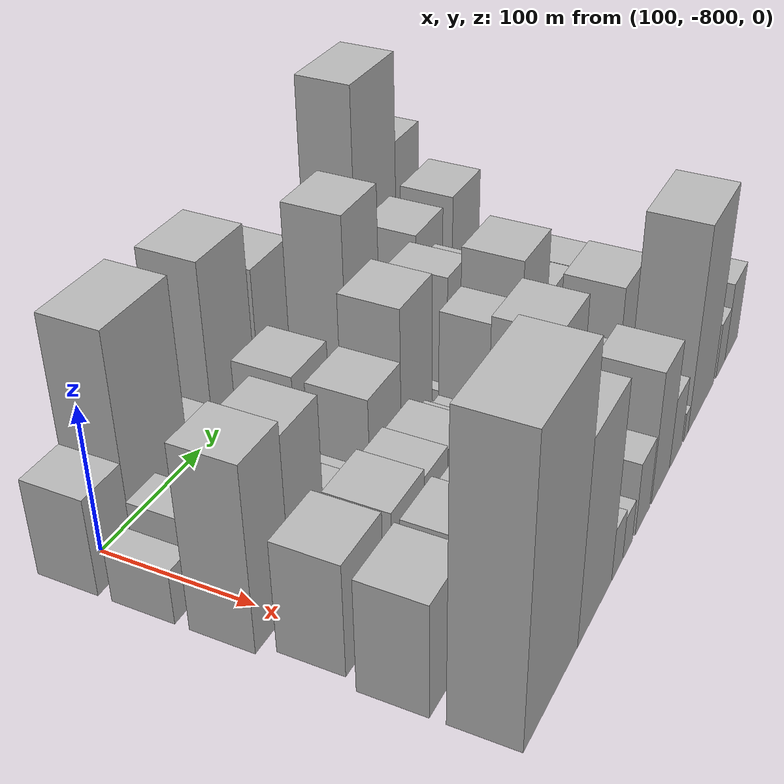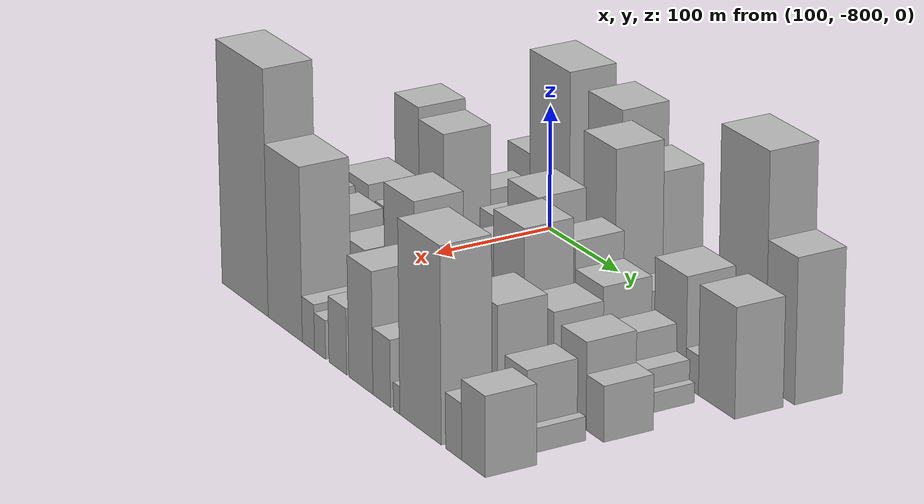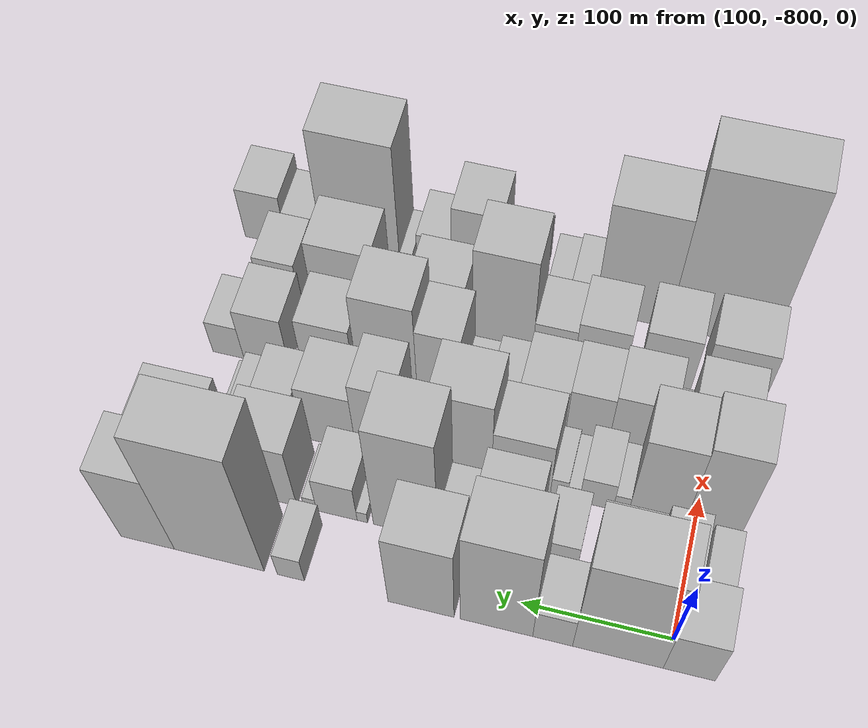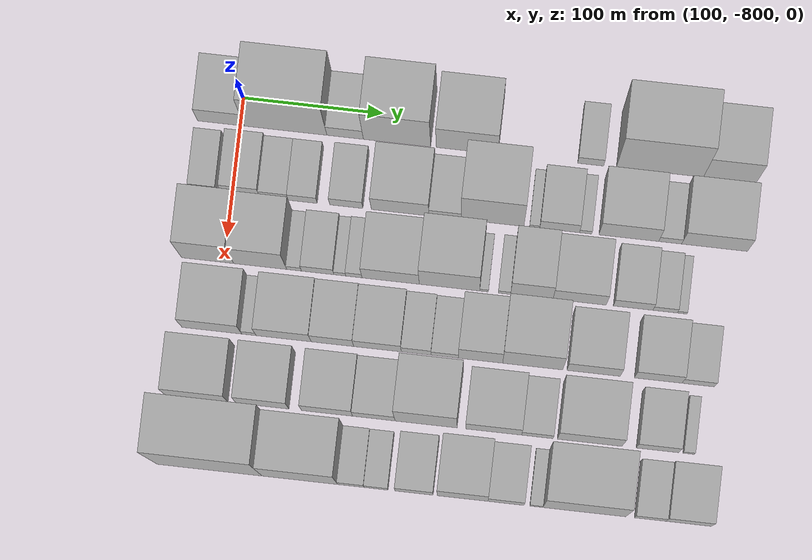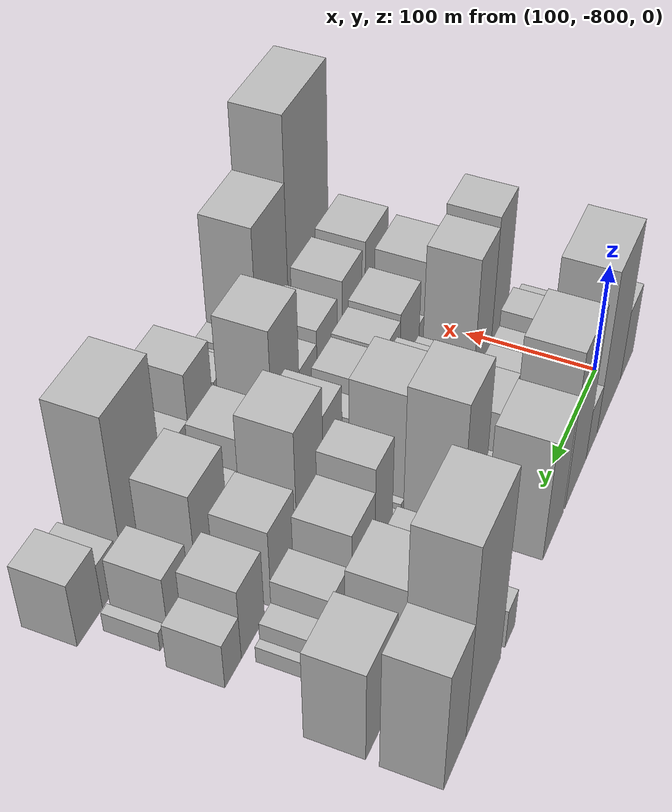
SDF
<sdf version="1.6">
 <world name="default">
  <model name="building_1">
   <static>1</static>
   <pose>100.0000 -813.3282 0 0.000000 0.000000 0.000000</pose>
   <link name="link">
    <pose>0 0 33.00 0 0 0</pose>
    <collision name="collision"><geometry><box><size>40.0000 33.3435 66.0000</size></box></geometry></collision>
    <visual name="visual">
     <cast_shadows>0</cast_shadows>
     <geometry><box><size>40.0000 33.3435 66.0000</size></box></geometry>
     <material>
      <script>
       <uri>model://HANNAS_wall/materials/scripts</uri>
       <uri>model://HANNAS_wall/materials/textures</uri>
       <name>vrc/HANNAS_wall</name>
      </script>
     </material>
    </visual>
   </link>
  </model>
  <model name="building_2">
   <static>1</static>
   <pose>100.0000 -767.2986 0 0.000000 0.000000 0.000000</pose>
   <link name="link">
    <pose>0 0 75.00 0 0 0</pose>
    <collision name="collision"><geometry><box><size>40.0000 58.7158 150.0000</size></box></geometry></collision>
    <visual name="visual">
     <cast_shadows>0</cast_shadows>
     <geometry><box><size>40.0000 58.7158 150.0000</size></box></geometry>
     <material>
      <script>
       <uri>model://HANNAS_wall/materials/scripts</uri>
       <uri>model://HANNAS_wall/materials/textures</uri>
       <name>vrc/HANNAS_wall</name>
      </script>
     </material>
    </visual>
   </link>
  </model>
  <model name="building_3">
   <static>1</static>
   <pose>100.0000 -724.9146 0 0.000000 0.000000 0.000000</pose>
   <link name="link">
    <pose>0 0 24.00 0 0 0</pose>
    <collision name="collision"><geometry><box><size>40.0000 26.0522 48.0000</size></box></geometry></collision>
    <visual name="visual">
     <cast_shadows>0</cast_shadows>
     <geometry><box><size>40.0000 26.0522 48.0000</size></box></geometry>
     <material>
      <script>
       <uri>model://HANNAS_wall/materials/scripts</uri>
       <uri>model://HANNAS_wall/materials/textures</uri>
       <name>vrc/HANNAS_wall</name>
      </script>
     </material>
    </visual>
   </link>
  </model>
  <model name="building_4">
   <static>1</static>
   <pose>100.0000 -687.8914 0 0.000000 0.000000 0.000000</pose>
   <link name="link">
    <pose>0 0 72.00 0 0 0</pose>
    <collision name="collision"><geometry><box><size>40.0000 47.9941 144.0000</size></box></geometry></collision>
    <visual name="visual">
     <cast_shadows>0</cast_shadows>
     <geometry><box><size>40.0000 47.9941 144.0000</size></box></geometry>
     <material>
      <script>
       <uri>model://HANNAS_wall/materials/scripts</uri>
       <uri>model://HANNAS_wall/materials/textures</uri>
       <name>vrc/HANNAS_wall</name>
      </script>
     </material>
    </visual>
   </link>
  </model>
  <model name="building_5">
   <static>1</static>
   <pose>100.0000 -637.8345 0 0.000000 0.000000 0.000000</pose>
   <link name="link">
    <pose>0 0 55.50 0 0 0</pose>
    <collision name="collision"><geometry><box><size>40.0000 44.1198 111.0000</size></box></geometry></collision>
    <visual name="visual">
     <cast_shadows>0</cast_shadows>
     <geometry><box><size>40.0000 44.1198 111.0000</size></box></geometry>
     <material>
      <script>
       <uri>model://HANNAS_wall/materials/scripts</uri>
       <uri>model://HANNAS_wall/materials/textures</uri>
       <name>vrc/HANNAS_wall</name>
      </script>
     </material>
    </visual>
   </link>
  </model>
  <model name="building_6">
   <static>1</static>
   <pose>100.0000 -549.9230 0 0.000000 0.000000 0.000000</pose>
   <link name="link">
    <pose>0 0 18.00 0 0 0</pose>
    <collision name="collision"><geometry><box><size>40.0000 18.5677 36.0000</size></box></geometry></collision>
    <visual name="visual">
     <cast_shadows>0</cast_shadows>
     <geometry><box><size>40.0000 18.5677 36.0000</size></box></geometry>
     <material>
      <script>
       <uri>model://HANNAS_wall/materials/scripts</uri>
       <uri>model://HANNAS_wall/materials/textures</uri>
       <name>vrc/HANNAS_wall</name>
      </script>
     </material>
    </visual>
   </link>
  </model>
  <model name="building_7">
   <static>1</static>
   <pose>100.0000 -500.5993 0 0.000000 0.000000 0.000000</pose>
   <link name="link">
    <pose>0 0 88.50 0 0 0</pose>
    <collision name="collision"><geometry><box><size>40.0000 62.0797 177.0000</size></box></geometry></collision>
    <visual name="visual">
     <cast_shadows>0</cast_shadows>
     <geometry><box><size>40.0000 62.0797 177.0000</size></box></geometry>
     <material>
      <script>
       <uri>model://HANNAS_wall/materials/scripts</uri>
       <uri>model://HANNAS_wall/materials/textures</uri>
       <name>vrc/HANNAS_wall</name>
      </script>
     </material>
    </visual>
   </link>
  </model>
  <model name="building_8">
   <static>1</static>
   <pose>100.0000 -450.7751 0 0.000000 0.000000 0.000000</pose>
   <link name="link">
    <pose>0 0 55.50 0 0 0</pose>
    <collision name="collision"><geometry><box><size>40.0000 37.5688 111.0000</size></box></geometry></collision>
    <visual name="visual">
     <cast_shadows>0</cast_shadows>
     <geometry><box><size>40.0000 37.5688 111.0000</size></box></geometry>
     <material>
      <script>
       <uri>model://HANNAS_wall/materials/scripts</uri>
       <uri>model://HANNAS_wall/materials/textures</uri>
       <name>vrc/HANNAS_wall</name>
      </script>
     </material>
    </visual>
   </link>
  </model>
  <model name="building_42">
   <static>1</static>
   <pose>149.0000 -820.1950 0 0.000000 0.000000 0.000000</pose>
   <link name="link">
    <pose>0 0 18.00 0 0 0</pose>
    <collision name="collision"><geometry><box><size>40.0000 19.6100 36.0000</size></box></geometry></collision>
    <visual name="visual">
     <cast_shadows>0</cast_shadows>
     <geometry><box><size>40.0000 19.6100 36.0000</size></box></geometry>
     <material>
      <script>
       <uri>model://HANNAS_wall/materials/scripts</uri>
       <uri>model://HANNAS_wall/materials/textures</uri>
       <name>vrc/HANNAS_wall</name>
      </script>
     </material>
    </visual>
   </link>
  </model>
  <model name="building_43">
   <static>1</static>
   <pose>149.0000 -793.7994 0 0.000000 0.000000 0.000000</pose>
   <link name="link">
    <pose>0 0 25.50 0 0 0</pose>
    <collision name="collision"><geometry><box><size>40.0000 27.1812 51.0000</size></box></geometry></collision>
    <visual name="visual">
     <cast_shadows>0</cast_shadows>
     <geometry><box><size>40.0000 27.1812 51.0000</size></box></geometry>
     <material>
      <script>
       <uri>model://HANNAS_wall/materials/scripts</uri>
       <uri>model://HANNAS_wall/materials/textures</uri>
       <name>vrc/HANNAS_wall</name>
      </script>
     </material>
    </visual>
   </link>
  </model>
  <model name="building_44">
   <static>1</static>
   <pose>149.0000 -770.0496 0 0.000000 0.000000 0.000000</pose>
   <link name="link">
    <pose>0 0 18.00 0 0 0</pose>
    <collision name="collision"><geometry><box><size>40.0000 20.3185 36.0000</size></box></geometry></collision>
    <visual name="visual">
     <cast_shadows>0</cast_shadows>
     <geometry><box><size>40.0000 20.3185 36.0000</size></box></geometry>
     <material>
      <script>
       <uri>model://HANNAS_wall/materials/scripts</uri>
       <uri>model://HANNAS_wall/materials/textures</uri>
       <name>vrc/HANNAS_wall</name>
      </script>
     </material>
    </visual>
   </link>
  </model>
  <model name="building_45">
   <static>1</static>
   <pose>149.0000 -749.5459 0 0.000000 0.000000 0.000000</pose>
   <link name="link">
    <pose>0 0 18.00 0 0 0</pose>
    <collision name="collision"><geometry><box><size>40.0000 20.6889 36.0000</size></box></geometry></collision>
    <visual name="visual">
     <cast_shadows>0</cast_shadows>
     <geometry><box><size>40.0000 20.6889 36.0000</size></box></geometry>
     <material>
      <script>
       <uri>model://HANNAS_wall/materials/scripts</uri>
       <uri>model://HANNAS_wall/materials/textures</uri>
       <name>vrc/HANNAS_wall</name>
      </script>
     </material>
    </visual>
   </link>
  </model>
  <model name="building_46">
   <static>1</static>
   <pose>149.0000 -718.4134 0 0.000000 0.000000 0.000000</pose>
   <link name="link">
    <pose>0 0 21.00 0 0 0</pose>
    <collision name="collision"><geometry><box><size>40.0000 23.5761 42.0000</size></box></geometry></collision>
    <visual name="visual">
     <cast_shadows>0</cast_shadows>
     <geometry><box><size>40.0000 23.5761 42.0000</size></box></geometry>
     <material>
      <script>
       <uri>model://HANNAS_wall/materials/scripts</uri>
       <uri>model://HANNAS_wall/materials/textures</uri>
       <name>vrc/HANNAS_wall</name>
      </script>
     </material>
    </visual>
   </link>
  </model>
  <model name="building_47">
   <static>1</static>
   <pose>149.0000 -680.1086 0 0.000000 0.000000 0.000000</pose>
   <link name="link">
    <pose>0 0 37.50 0 0 0</pose>
    <collision name="collision"><geometry><box><size>40.0000 41.0334 75.0000</size></box></geometry></collision>
    <visual name="visual">
     <cast_shadows>0</cast_shadows>
     <geometry><box><size>40.0000 41.0334 75.0000</size></box></geometry>
     <material>
      <script>
       <uri>model://HANNAS_wall/materials/scripts</uri>
       <uri>model://HANNAS_wall/materials/textures</uri>
       <name>vrc/HANNAS_wall</name>
      </script>
     </material>
    </visual>
   </link>
  </model>
  <model name="building_48">
   <static>1</static>
   <pose>149.0000 -648.0608 0 0.000000 0.000000 0.000000</pose>
   <link name="link">
    <pose>0 0 19.50 0 0 0</pose>
    <collision name="collision"><geometry><box><size>40.0000 23.0622 39.0000</size></box></geometry></collision>
    <visual name="visual">
     <cast_shadows>0</cast_shadows>
     <geometry><box><size>40.0000 23.0622 39.0000</size></box></geometry>
     <material>
      <script>
       <uri>model://HANNAS_wall/materials/scripts</uri>
       <uri>model://HANNAS_wall/materials/textures</uri>
       <name>vrc/HANNAS_wall</name>
      </script>
     </material>
    </visual>
   </link>
  </model>
  <model name="building_49">
   <static>1</static>
   <pose>149.0000 -614.3037 0 0.000000 0.000000 0.000000</pose>
   <link name="link">
    <pose>0 0 73.50 0 0 0</pose>
    <collision name="collision"><geometry><box><size>40.0000 44.4520 147.0000</size></box></geometry></collision>
    <visual name="visual">
     <cast_shadows>0</cast_shadows>
     <geometry><box><size>40.0000 44.4520 147.0000</size></box></geometry>
     <material>
      <script>
       <uri>model://HANNAS_wall/materials/scripts</uri>
       <uri>model://HANNAS_wall/materials/textures</uri>
       <name>vrc/HANNAS_wall</name>
      </script>
     </material>
    </visual>
   </link>
  </model>
  <model name="building_50">
   <static>1</static>
   <pose>149.0000 -584.4363 0 0.000000 0.000000 0.000000</pose>
   <link name="link">
    <pose>0 0 7.50 0 0 0</pose>
    <collision name="collision"><geometry><box><size>40.0000 7.2830 15.0000</size></box></geometry></collision>
    <visual name="visual">
     <cast_shadows>0</cast_shadows>
     <geometry><box><size>40.0000 7.2830 15.0000</size></box></geometry>
     <material>
      <script>
       <uri>model://HANNAS_wall/materials/scripts</uri>
       <uri>model://HANNAS_wall/materials/textures</uri>
       <name>vrc/HANNAS_wall</name>
      </script>
     </material>
    </visual>
   </link>
  </model>
  <model name="building_51">
   <static>1</static>
   <pose>149.0000 -566.6788 0 0.000000 0.000000 0.000000</pose>
   <link name="link">
    <pose>0 0 25.50 0 0 0</pose>
    <collision name="collision"><geometry><box><size>40.0000 28.2321 51.0000</size></box></geometry></collision>
    <visual name="visual">
     <cast_shadows>0</cast_shadows>
     <geometry><box><size>40.0000 28.2321 51.0000</size></box></geometry>
     <material>
      <script>
       <uri>model://HANNAS_wall/materials/scripts</uri>
       <uri>model://HANNAS_wall/materials/textures</uri>
       <name>vrc/HANNAS_wall</name>
      </script>
     </material>
    </visual>
   </link>
  </model>
  <model name="building_52">
   <static>1</static>
   <pose>149.0000 -548.1410 0 0.000000 0.000000 0.000000</pose>
   <link name="link">
    <pose>0 0 9.00 0 0 0</pose>
    <collision name="collision"><geometry><box><size>40.0000 8.8436 18.0000</size></box></geometry></collision>
    <visual name="visual">
     <cast_shadows>0</cast_shadows>
     <geometry><box><size>40.0000 8.8436 18.0000</size></box></geometry>
     <material>
      <script>
       <uri>model://HANNAS_wall/materials/scripts</uri>
       <uri>model://HANNAS_wall/materials/textures</uri>
       <name>vrc/HANNAS_wall</name>
      </script>
     </material>
    </visual>
   </link>
  </model>
  <model name="building_53">
   <static>1</static>
   <pose>149.0000 -517.4538 0 0.000000 0.000000 0.000000</pose>
   <link name="link">
    <pose>0 0 42.00 0 0 0</pose>
    <collision name="collision"><geometry><box><size>40.0000 42.5308 84.0000</size></box></geometry></collision>
    <visual name="visual">
     <cast_shadows>0</cast_shadows>
     <geometry><box><size>40.0000 42.5308 84.0000</size></box></geometry>
     <material>
      <script>
       <uri>model://HANNAS_wall/materials/scripts</uri>
       <uri>model://HANNAS_wall/materials/textures</uri>
       <name>vrc/HANNAS_wall</name>
      </script>
     </material>
    </visual>
   </link>
  </model>
  <model name="building_54">
   <static>1</static>
   <pose>149.0000 -488.0152 0 0.000000 0.000000 0.000000</pose>
   <link name="link">
    <pose>0 0 15.00 0 0 0</pose>
    <collision name="collision"><geometry><box><size>40.0000 16.3463 30.0000</size></box></geometry></collision>
    <visual name="visual">
     <cast_shadows>0</cast_shadows>
     <geometry><box><size>40.0000 16.3463 30.0000</size></box></geometry>
     <material>
      <script>
       <uri>model://HANNAS_wall/materials/scripts</uri>
       <uri>model://HANNAS_wall/materials/textures</uri>
       <name>vrc/HANNAS_wall</name>
      </script>
     </material>
    </visual>
   </link>
  </model>
  <model name="building_55">
   <static>1</static>
   <pose>149.0000 -456.4051 0 0.000000 0.000000 0.000000</pose>
   <link name="link">
    <pose>0 0 42.00 0 0 0</pose>
    <collision name="collision"><geometry><box><size>40.0000 46.8740 84.0000</size></box></geometry></collision>
    <visual name="visual">
     <cast_shadows>0</cast_shadows>
     <geometry><box><size>40.0000 46.8740 84.0000</size></box></geometry>
     <material>
      <script>
       <uri>model://HANNAS_wall/materials/scripts</uri>
       <uri>model://HANNAS_wall/materials/textures</uri>
       <name>vrc/HANNAS_wall</name>
      </script>
     </material>
    </visual>
   </link>
  </model>
  <model name="building_93">
   <static>1</static>
   <pose>198.0000 -811.4864 0 0.000000 0.000000 0.000000</pose>
   <link name="link">
    <pose>0 0 61.50 0 0 0</pose>
    <collision name="collision"><geometry><box><size>40.0000 37.0272 123.0000</size></box></geometry></collision>
    <visual name="visual">
     <cast_shadows>0</cast_shadows>
     <geometry><box><size>40.0000 37.0272 123.0000</size></box></geometry>
     <material>
      <script>
       <uri>model://HANNAS_wall/materials/scripts</uri>
       <uri>model://HANNAS_wall/materials/textures</uri>
       <name>vrc/HANNAS_wall</name>
      </script>
     </material>
    </visual>
   </link>
  </model>
  <model name="building_94">
   <static>1</static>
   <pose>198.0000 -774.0899 0 0.000000 0.000000 0.000000</pose>
   <link name="link">
    <pose>0 0 57.00 0 0 0</pose>
    <collision name="collision"><geometry><box><size>40.0000 37.7657 114.0000</size></box></geometry></collision>
    <visual name="visual">
     <cast_shadows>0</cast_shadows>
     <geometry><box><size>40.0000 37.7657 114.0000</size></box></geometry>
     <material>
      <script>
       <uri>model://HANNAS_wall/materials/scripts</uri>
       <uri>model://HANNAS_wall/materials/textures</uri>
       <name>vrc/HANNAS_wall</name>
      </script>
     </material>
    </visual>
   </link>
  </model>
  <model name="building_95">
   <static>1</static>
   <pose>198.0000 -749.9682 0 0.000000 0.000000 0.000000</pose>
   <link name="link">
    <pose>0 0 12.00 0 0 0</pose>
    <collision name="collision"><geometry><box><size>40.0000 10.4777 24.0000</size></box></geometry></collision>
    <visual name="visual">
     <cast_shadows>0</cast_shadows>
     <geometry><box><size>40.0000 10.4777 24.0000</size></box></geometry>
     <material>
      <script>
       <uri>model://HANNAS_wall/materials/scripts</uri>
       <uri>model://HANNAS_wall/materials/textures</uri>
       <name>vrc/HANNAS_wall</name>
      </script>
     </material>
    </visual>
   </link>
  </model>
  <model name="building_96">
   <static>1</static>
   <pose>198.0000 -733.2221 0 0.000000 0.000000 0.000000</pose>
   <link name="link">
    <pose>0 0 19.50 0 0 0</pose>
    <collision name="collision"><geometry><box><size>40.0000 23.0145 39.0000</size></box></geometry></collision>
    <visual name="visual">
     <cast_shadows>0</cast_shadows>
     <geometry><box><size>40.0000 23.0145 39.0000</size></box></geometry>
     <material>
      <script>
       <uri>model://HANNAS_wall/materials/scripts</uri>
       <uri>model://HANNAS_wall/materials/textures</uri>
       <name>vrc/HANNAS_wall</name>
      </script>
     </material>
    </visual>
   </link>
  </model>
  <model name="building_97">
   <static>1</static>
   <pose>198.0000 -717.4921 0 0.000000 0.000000 0.000000</pose>
   <link name="link">
    <pose>0 0 10.50 0 0 0</pose>
    <collision name="collision"><geometry><box><size>40.0000 8.4455 21.0000</size></box></geometry></collision>
    <visual name="visual">
     <cast_shadows>0</cast_shadows>
     <geometry><box><size>40.0000 8.4455 21.0000</size></box></geometry>
     <material>
      <script>
       <uri>model://HANNAS_wall/materials/scripts</uri>
       <uri>model://HANNAS_wall/materials/textures</uri>
       <name>vrc/HANNAS_wall</name>
      </script>
     </material>
    </visual>
   </link>
  </model>
  <model name="building_98">
   <static>1</static>
   <pose>198.0000 -707.4735 0 0.000000 0.000000 0.000000</pose>
   <link name="link">
    <pose>0 0 13.50 0 0 0</pose>
    <collision name="collision"><geometry><box><size>40.0000 11.5918 27.0000</size></box></geometry></collision>
    <visual name="visual">
     <cast_shadows>0</cast_shadows>
     <geometry><box><size>40.0000 11.5918 27.0000</size></box></geometry>
     <material>
      <script>
       <uri>model://HANNAS_wall/materials/scripts</uri>
       <uri>model://HANNAS_wall/materials/textures</uri>
       <name>vrc/HANNAS_wall</name>
      </script>
     </material>
    </visual>
   </link>
  </model>
  <model name="building_99">
   <static>1</static>
   <pose>198.0000 -681.3252 0 0.000000 0.000000 0.000000</pose>
   <link name="link">
    <pose>0 0 37.50 0 0 0</pose>
    <collision name="collision"><geometry><box><size>40.0000 40.7047 75.0000</size></box></geometry></collision>
    <visual name="visual">
     <cast_shadows>0</cast_shadows>
     <geometry><box><size>40.0000 40.7047 75.0000</size></box></geometry>
     <material>
      <script>
       <uri>model://HANNAS_wall/materials/scripts</uri>
       <uri>model://HANNAS_wall/materials/textures</uri>
       <name>vrc/HANNAS_wall</name>
      </script>
     </material>
    </visual>
   </link>
  </model>
  <model name="building_100">
   <static>1</static>
   <pose>198.0000 -639.4807 0 0.000000 0.000000 0.000000</pose>
   <link name="link">
    <pose>0 0 55.50 0 0 0</pose>
    <collision name="collision"><geometry><box><size>40.0000 42.9842 111.0000</size></box></geometry></collision>
    <visual name="visual">
     <cast_shadows>0</cast_shadows>
     <geometry><box><size>40.0000 42.9842 111.0000</size></box></geometry>
     <material>
      <script>
       <uri>model://HANNAS_wall/materials/scripts</uri>
       <uri>model://HANNAS_wall/materials/textures</uri>
       <name>vrc/HANNAS_wall</name>
      </script>
     </material>
    </visual>
   </link>
  </model>
  <model name="building_101">
   <static>1</static>
   <pose>198.0000 -614.9303 0 0.000000 0.000000 0.000000</pose>
   <link name="link">
    <pose>0 0 7.50 0 0 0</pose>
    <collision name="collision"><geometry><box><size>40.0000 6.1166 15.0000</size></box></geometry></collision>
    <visual name="visual">
     <cast_shadows>0</cast_shadows>
     <geometry><box><size>40.0000 6.1166 15.0000</size></box></geometry>
     <material>
      <script>
       <uri>model://HANNAS_wall/materials/scripts</uri>
       <uri>model://HANNAS_wall/materials/textures</uri>
       <name>vrc/HANNAS_wall</name>
      </script>
     </material>
    </visual>
   </link>
  </model>
  <model name="building_102">
   <static>1</static>
   <pose>198.0000 -600.4459 0 0.000000 0.000000 0.000000</pose>
   <link name="link">
    <pose>0 0 9.00 0 0 0</pose>
    <collision name="collision"><geometry><box><size>40.0000 8.8521 18.0000</size></box></geometry></collision>
    <visual name="visual">
     <cast_shadows>0</cast_shadows>
     <geometry><box><size>40.0000 8.8521 18.0000</size></box></geometry>
     <material>
      <script>
       <uri>model://HANNAS_wall/materials/scripts</uri>
       <uri>model://HANNAS_wall/materials/textures</uri>
       <name>vrc/HANNAS_wall</name>
      </script>
     </material>
    </visual>
   </link>
  </model>
  <model name="building_103">
   <static>1</static>
   <pose>198.0000 -581.0031 0 0.000000 0.000000 0.000000</pose>
   <link name="link">
    <pose>0 0 48.00 0 0 0</pose>
    <collision name="collision"><geometry><box><size>40.0000 30.0336 96.0000</size></box></geometry></collision>
    <visual name="visual">
     <cast_shadows>0</cast_shadows>
     <geometry><box><size>40.0000 30.0336 96.0000</size></box></geometry>
     <material>
      <script>
       <uri>model://HANNAS_wall/materials/scripts</uri>
       <uri>model://HANNAS_wall/materials/textures</uri>
       <name>vrc/HANNAS_wall</name>
      </script>
     </material>
    </visual>
   </link>
  </model>
  <model name="building_104">
   <static>1</static>
   <pose>198.0000 -547.0536 0 0.000000 0.000000 0.000000</pose>
   <link name="link">
    <pose>0 0 37.50 0 0 0</pose>
    <collision name="collision"><geometry><box><size>40.0000 37.8654 75.0000</size></box></geometry></collision>
    <visual name="visual">
     <cast_shadows>0</cast_shadows>
     <geometry><box><size>40.0000 37.8654 75.0000</size></box></geometry>
     <material>
      <script>
       <uri>model://HANNAS_wall/materials/scripts</uri>
       <uri>model://HANNAS_wall/materials/textures</uri>
       <name>vrc/HANNAS_wall</name>
      </script>
     </material>
    </visual>
   </link>
  </model>
  <model name="building_105">
   <static>1</static>
   <pose>198.0000 -509.0617 0 0.000000 0.000000 0.000000</pose>
   <link name="link">
    <pose>0 0 25.50 0 0 0</pose>
    <collision name="collision"><geometry><box><size>40.0000 28.1185 51.0000</size></box></geometry></collision>
    <visual name="visual">
     <cast_shadows>0</cast_shadows>
     <geometry><box><size>40.0000 28.1185 51.0000</size></box></geometry>
     <material>
      <script>
       <uri>model://HANNAS_wall/materials/scripts</uri>
       <uri>model://HANNAS_wall/materials/textures</uri>
       <name>vrc/HANNAS_wall</name>
      </script>
     </material>
    </visual>
   </link>
  </model>
  <model name="building_106">
   <static>1</static>
   <pose>198.0000 -486.3346 0 0.000000 0.000000 0.000000</pose>
   <link name="link">
    <pose>0 0 15.00 0 0 0</pose>
    <collision name="collision"><geometry><box><size>40.0000 17.3357 30.0000</size></box></geometry></collision>
    <visual name="visual">
     <cast_shadows>0</cast_shadows>
     <geometry><box><size>40.0000 17.3357 30.0000</size></box></geometry>
     <material>
      <script>
       <uri>model://HANNAS_wall/materials/scripts</uri>
       <uri>model://HANNAS_wall/materials/textures</uri>
       <name>vrc/HANNAS_wall</name>
      </script>
     </material>
    </visual>
   </link>
  </model>
  <model name="building_107">
   <static>1</static>
   <pose>198.0000 -474.2536 0 0.000000 0.000000 0.000000</pose>
   <link name="link">
    <pose>0 0 7.50 0 0 0</pose>
    <collision name="collision"><geometry><box><size>40.0000 6.8264 15.0000</size></box></geometry></collision>
    <visual name="visual">
     <cast_shadows>0</cast_shadows>
     <geometry><box><size>40.0000 6.8264 15.0000</size></box></geometry>
     <material>
      <script>
       <uri>model://HANNAS_wall/materials/scripts</uri>
       <uri>model://HANNAS_wall/materials/textures</uri>
       <name>vrc/HANNAS_wall</name>
      </script>
     </material>
    </visual>
   </link>
  </model>
  <model name="building_141">
   <static>1</static>
   <pose>247.0000 -802.7456 0 0.000000 0.000000 0.000000</pose>
   <link name="link">
    <pose>0 0 37.50 0 0 0</pose>
    <collision name="collision"><geometry><box><size>40.0000 42.5088 75.0000</size></box></geometry></collision>
    <visual name="visual">
     <cast_shadows>0</cast_shadows>
     <geometry><box><size>40.0000 42.5088 75.0000</size></box></geometry>
     <material>
      <script>
       <uri>model://HANNAS_wall/materials/scripts</uri>
       <uri>model://HANNAS_wall/materials/textures</uri>
       <name>vrc/HANNAS_wall</name>
      </script>
     </material>
    </visual>
   </link>
  </model>
  <model name="building_142">
   <static>1</static>
   <pose>247.0000 -776.4169 0 0.000000 0.000000 0.000000</pose>
   <link name="link">
    <pose>0 0 12.00 0 0 0</pose>
    <collision name="collision"><geometry><box><size>40.0000 10.1486 24.0000</size></box></geometry></collision>
    <visual name="visual">
     <cast_shadows>0</cast_shadows>
     <geometry><box><size>40.0000 10.1486 24.0000</size></box></geometry>
     <material>
      <script>
       <uri>model://HANNAS_wall/materials/scripts</uri>
       <uri>model://HANNAS_wall/materials/textures</uri>
       <name>vrc/HANNAS_wall</name>
      </script>
     </material>
    </visual>
   </link>
  </model>
  <model name="building_143">
   <static>1</static>
   <pose>247.0000 -751.8167 0 0.000000 0.000000 0.000000</pose>
   <link name="link">
    <pose>0 0 33.00 0 0 0</pose>
    <collision name="collision"><geometry><box><size>40.0000 39.0520 66.0000</size></box></geometry></collision>
    <visual name="visual">
     <cast_shadows>0</cast_shadows>
     <geometry><box><size>40.0000 39.0520 66.0000</size></box></geometry>
     <material>
      <script>
       <uri>model://HANNAS_wall/materials/scripts</uri>
       <uri>model://HANNAS_wall/materials/textures</uri>
       <name>vrc/HANNAS_wall</name>
      </script>
     </material>
    </visual>
   </link>
  </model>
  <model name="building_144">
   <static>1</static>
   <pose>247.0000 -717.1081 0 0.000000 0.000000 0.000000</pose>
   <link name="link">
    <pose>0 0 30.00 0 0 0</pose>
    <collision name="collision"><geometry><box><size>40.0000 30.3651 60.0000</size></box></geometry></collision>
    <visual name="visual">
     <cast_shadows>0</cast_shadows>
     <geometry><box><size>40.0000 30.3651 60.0000</size></box></geometry>
     <material>
      <script>
       <uri>model://HANNAS_wall/materials/scripts</uri>
       <uri>model://HANNAS_wall/materials/textures</uri>
       <name>vrc/HANNAS_wall</name>
      </script>
     </material>
    </visual>
   </link>
  </model>
  <model name="building_145">
   <static>1</static>
   <pose>247.0000 -685.0632 0 0.000000 0.000000 0.000000</pose>
   <link name="link">
    <pose>0 0 28.50 0 0 0</pose>
    <collision name="collision"><geometry><box><size>40.0000 33.7247 57.0000</size></box></geometry></collision>
    <visual name="visual">
     <cast_shadows>0</cast_shadows>
     <geometry><box><size>40.0000 33.7247 57.0000</size></box></geometry>
     <material>
      <script>
       <uri>model://HANNAS_wall/materials/scripts</uri>
       <uri>model://HANNAS_wall/materials/textures</uri>
       <name>vrc/HANNAS_wall</name>
      </script>
     </material>
    </visual>
   </link>
  </model>
  <model name="building_146">
   <static>1</static>
   <pose>247.0000 -657.5959 0 0.000000 0.000000 0.000000</pose>
   <link name="link">
    <pose>0 0 21.00 0 0 0</pose>
    <collision name="collision"><geometry><box><size>40.0000 21.2098 42.0000</size></box></geometry></collision>
    <visual name="visual">
     <cast_shadows>0</cast_shadows>
     <geometry><box><size>40.0000 21.2098 42.0000</size></box></geometry>
     <material>
      <script>
       <uri>model://HANNAS_wall/materials/scripts</uri>
       <uri>model://HANNAS_wall/materials/textures</uri>
       <name>vrc/HANNAS_wall</name>
      </script>
     </material>
    </visual>
   </link>
  </model>
  <model name="building_147">
   <static>1</static>
   <pose>247.0000 -637.2472 0 0.000000 0.000000 0.000000</pose>
   <link name="link">
    <pose>0 0 16.50 0 0 0</pose>
    <collision name="collision"><geometry><box><size>40.0000 19.4875 33.0000</size></box></geometry></collision>
    <visual name="visual">
     <cast_shadows>0</cast_shadows>
     <geometry><box><size>40.0000 19.4875 33.0000</size></box></geometry>
     <material>
      <script>
       <uri>model://HANNAS_wall/materials/scripts</uri>
       <uri>model://HANNAS_wall/materials/textures</uri>
       <name>vrc/HANNAS_wall</name>
      </script>
     </material>
    </visual>
   </link>
  </model>
  <model name="building_148">
   <static>1</static>
   <pose>247.0000 -611.9097 0 0.000000 0.000000 0.000000</pose>
   <link name="link">
    <pose>0 0 46.50 0 0 0</pose>
    <collision name="collision"><geometry><box><size>40.0000 31.1875 93.0000</size></box></geometry></collision>
    <visual name="visual">
     <cast_shadows>0</cast_shadows>
     <geometry><box><size>40.0000 31.1875 93.0000</size></box></geometry>
     <material>
      <script>
       <uri>model://HANNAS_wall/materials/scripts</uri>
       <uri>model://HANNAS_wall/materials/textures</uri>
       <name>vrc/HANNAS_wall</name>
      </script>
     </material>
    </visual>
   </link>
  </model>
  <model name="building_149">
   <static>1</static>
   <pose>247.0000 -575.0045 0 0.000000 0.000000 0.000000</pose>
   <link name="link">
    <pose>0 0 60.00 0 0 0</pose>
    <collision name="collision"><geometry><box><size>40.0000 42.6229 120.0000</size></box></geometry></collision>
    <visual name="visual">
     <cast_shadows>0</cast_shadows>
     <geometry><box><size>40.0000 42.6229 120.0000</size></box></geometry>
     <material>
      <script>
       <uri>model://HANNAS_wall/materials/scripts</uri>
       <uri>model://HANNAS_wall/materials/textures</uri>
       <name>vrc/HANNAS_wall</name>
      </script>
     </material>
    </visual>
   </link>
  </model>
  <model name="building_150">
   <static>1</static>
   <pose>247.0000 -531.7801 0 0.000000 0.000000 0.000000</pose>
   <link name="link">
    <pose>0 0 36.00 0 0 0</pose>
    <collision name="collision"><geometry><box><size>40.0000 37.8259 72.0000</size></box></geometry></collision>
    <visual name="visual">
     <cast_shadows>0</cast_shadows>
     <geometry><box><size>40.0000 37.8259 72.0000</size></box></geometry>
     <material>
      <script>
       <uri>model://HANNAS_wall/materials/scripts</uri>
       <uri>model://HANNAS_wall/materials/textures</uri>
       <name>vrc/HANNAS_wall</name>
      </script>
     </material>
    </visual>
   </link>
  </model>
  <model name="building_151">
   <static>1</static>
   <pose>247.0000 -485.9798 0 0.000000 0.000000 0.000000</pose>
   <link name="link">
    <pose>0 0 33.00 0 0 0</pose>
    <collision name="collision"><geometry><box><size>40.0000 33.7748 66.0000</size></box></geometry></collision>
    <visual name="visual">
     <cast_shadows>0</cast_shadows>
     <geometry><box><size>40.0000 33.7748 66.0000</size></box></geometry>
     <material>
      <script>
       <uri>model://HANNAS_wall/materials/scripts</uri>
       <uri>model://HANNAS_wall/materials/textures</uri>
       <name>vrc/HANNAS_wall</name>
      </script>
     </material>
    </visual>
   </link>
  </model>
  <model name="building_152">
   <static>1</static>
   <pose>247.0000 -457.5372 0 0.000000 0.000000 0.000000</pose>
   <link name="link">
    <pose>0 0 21.00 0 0 0</pose>
    <collision name="collision"><geometry><box><size>40.0000 23.1103 42.0000</size></box></geometry></collision>
    <visual name="visual">
     <cast_shadows>0</cast_shadows>
     <geometry><box><size>40.0000 23.1103 42.0000</size></box></geometry>
     <material>
      <script>
       <uri>model://HANNAS_wall/materials/scripts</uri>
       <uri>model://HANNAS_wall/materials/textures</uri>
       <name>vrc/HANNAS_wall</name>
      </script>
     </material>
    </visual>
   </link>
  </model>
  <model name="building_192">
   <static>1</static>
   <pose>296.0000 -807.7997 0 0.000000 0.000000 0.000000</pose>
   <link name="link">
    <pose>0 0 37.50 0 0 0</pose>
    <collision name="collision"><geometry><box><size>40.0000 44.4007 75.0000</size></box></geometry></collision>
    <visual name="visual">
     <cast_shadows>0</cast_shadows>
     <geometry><box><size>40.0000 44.4007 75.0000</size></box></geometry>
     <material>
      <script>
       <uri>model://HANNAS_wall/materials/scripts</uri>
       <uri>model://HANNAS_wall/materials/textures</uri>
       <name>vrc/HANNAS_wall</name>
      </script>
     </material>
    </visual>
   </link>
  </model>
  <model name="building_193">
   <static>1</static>
   <pose>296.0000 -760.9673 0 0.000000 0.000000 0.000000</pose>
   <link name="link">
    <pose>0 0 36.00 0 0 0</pose>
    <collision name="collision"><geometry><box><size>40.0000 37.2641 72.0000</size></box></geometry></collision>
    <visual name="visual">
     <cast_shadows>0</cast_shadows>
     <geometry><box><size>40.0000 37.2641 72.0000</size></box></geometry>
     <material>
      <script>
       <uri>model://HANNAS_wall/materials/scripts</uri>
       <uri>model://HANNAS_wall/materials/textures</uri>
       <name>vrc/HANNAS_wall</name>
      </script>
     </material>
    </visual>
   </link>
  </model>
  <model name="building_194">
   <static>1</static>
   <pose>296.0000 -715.2181 0 0.000000 0.000000 0.000000</pose>
   <link name="link">
    <pose>0 0 31.50 0 0 0</pose>
    <collision name="collision"><geometry><box><size>40.0000 36.2342 63.0000</size></box></geometry></collision>
    <visual name="visual">
     <cast_shadows>0</cast_shadows>
     <geometry><box><size>40.0000 36.2342 63.0000</size></box></geometry>
     <material>
      <script>
       <uri>model://HANNAS_wall/materials/scripts</uri>
       <uri>model://HANNAS_wall/materials/textures</uri>
       <name>vrc/HANNAS_wall</name>
      </script>
     </material>
    </visual>
   </link>
  </model>
  <model name="building_195">
   <static>1</static>
   <pose>296.0000 -682.0854 0 0.000000 0.000000 0.000000</pose>
   <link name="link">
    <pose>0 0 25.50 0 0 0</pose>
    <collision name="collision"><geometry><box><size>40.0000 30.0311 51.0000</size></box></geometry></collision>
    <visual name="visual">
     <cast_shadows>0</cast_shadows>
     <geometry><box><size>40.0000 30.0311 51.0000</size></box></geometry>
     <material>
      <script>
       <uri>model://HANNAS_wall/materials/scripts</uri>
       <uri>model://HANNAS_wall/materials/textures</uri>
       <name>vrc/HANNAS_wall</name>
      </script>
     </material>
    </visual>
   </link>
  </model>
  <model name="building_196">
   <static>1</static>
   <pose>296.0000 -645.0857 0 0.000000 0.000000 0.000000</pose>
   <link name="link">
    <pose>0 0 63.00 0 0 0</pose>
    <collision name="collision"><geometry><box><size>40.0000 43.9684 126.0000</size></box></geometry></collision>
    <visual name="visual">
     <cast_shadows>0</cast_shadows>
     <geometry><box><size>40.0000 43.9684 126.0000</size></box></geometry>
     <material>
      <script>
       <uri>model://HANNAS_wall/materials/scripts</uri>
       <uri>model://HANNAS_wall/materials/textures</uri>
       <name>vrc/HANNAS_wall</name>
      </script>
     </material>
    </visual>
   </link>
  </model>
  <model name="building_197">
   <static>1</static>
   <pose>296.0000 -597.2922 0 0.000000 0.000000 0.000000</pose>
   <link name="link">
    <pose>0 0 34.50 0 0 0</pose>
    <collision name="collision"><geometry><box><size>40.0000 39.6186 69.0000</size></box></geometry></collision>
    <visual name="visual">
     <cast_shadows>0</cast_shadows>
     <geometry><box><size>40.0000 39.6186 69.0000</size></box></geometry>
     <material>
      <script>
       <uri>model://HANNAS_wall/materials/scripts</uri>
       <uri>model://HANNAS_wall/materials/textures</uri>
       <name>vrc/HANNAS_wall</name>
      </script>
     </material>
    </visual>
   </link>
  </model>
  <model name="building_198">
   <static>1</static>
   <pose>296.0000 -566.3011 0 0.000000 0.000000 0.000000</pose>
   <link name="link">
    <pose>0 0 19.50 0 0 0</pose>
    <collision name="collision"><geometry><box><size>40.0000 22.3635 39.0000</size></box></geometry></collision>
    <visual name="visual">
     <cast_shadows>0</cast_shadows>
     <geometry><box><size>40.0000 22.3635 39.0000</size></box></geometry>
     <material>
      <script>
       <uri>model://HANNAS_wall/materials/scripts</uri>
       <uri>model://HANNAS_wall/materials/textures</uri>
       <name>vrc/HANNAS_wall</name>
      </script>
     </material>
    </visual>
   </link>
  </model>
  <model name="building_199">
   <static>1</static>
   <pose>296.0000 -529.1674 0 0.000000 0.000000 0.000000</pose>
   <link name="link">
    <pose>0 0 45.00 0 0 0</pose>
    <collision name="collision"><geometry><box><size>40.0000 45.9039 90.0000</size></box></geometry></collision>
    <visual name="visual">
     <cast_shadows>0</cast_shadows>
     <geometry><box><size>40.0000 45.9039 90.0000</size></box></geometry>
     <material>
      <script>
       <uri>model://HANNAS_wall/materials/scripts</uri>
       <uri>model://HANNAS_wall/materials/textures</uri>
       <name>vrc/HANNAS_wall</name>
      </script>
     </material>
    </visual>
   </link>
  </model>
  <model name="building_200">
   <static>1</static>
   <pose>296.0000 -481.1597 0 0.000000 0.000000 0.000000</pose>
   <link name="link">
    <pose>0 0 28.50 0 0 0</pose>
    <collision name="collision"><geometry><box><size>40.0000 30.1115 57.0000</size></box></geometry></collision>
    <visual name="visual">
     <cast_shadows>0</cast_shadows>
     <geometry><box><size>40.0000 30.1115 57.0000</size></box></geometry>
     <material>
      <script>
       <uri>model://HANNAS_wall/materials/scripts</uri>
       <uri>model://HANNAS_wall/materials/textures</uri>
       <name>vrc/HANNAS_wall</name>
      </script>
     </material>
    </visual>
   </link>
  </model>
  <model name="building_201">
   <static>1</static>
   <pose>296.0000 -459.0381 0 0.000000 0.000000 0.000000</pose>
   <link name="link">
    <pose>0 0 9.00 0 0 0</pose>
    <collision name="collision"><geometry><box><size>40.0000 8.1315 18.0000</size></box></geometry></collision>
    <visual name="visual">
     <cast_shadows>0</cast_shadows>
     <geometry><box><size>40.0000 8.1315 18.0000</size></box></geometry>
     <material>
      <script>
       <uri>model://HANNAS_wall/materials/scripts</uri>
       <uri>model://HANNAS_wall/materials/textures</uri>
       <name>vrc/HANNAS_wall</name>
      </script>
     </material>
    </visual>
   </link>
  </model>
  <model name="building_236">
   <static>1</static>
   <pose>345.0000 -792.8366 0 0.000000 0.000000 0.000000</pose>
   <link name="link">
    <pose>0 0 96.00 0 0 0</pose>
    <collision name="collision"><geometry><box><size>40.0000 74.3269 192.0000</size></box></geometry></collision>
    <visual name="visual">
     <cast_shadows>0</cast_shadows>
     <geometry><box><size>40.0000 74.3269 192.0000</size></box></geometry>
     <material>
      <script>
       <uri>model://HANNAS_wall/materials/scripts</uri>
       <uri>model://HANNAS_wall/materials/textures</uri>
       <name>vrc/HANNAS_wall</name>
      </script>
     </material>
    </visual>
   </link>
  </model>
  <model name="building_237">
   <static>1</static>
   <pose>345.0000 -728.9081 0 0.000000 0.000000 0.000000</pose>
   <link name="link">
    <pose>0 0 67.50 0 0 0</pose>
    <collision name="collision"><geometry><box><size>40.0000 53.5301 135.0000</size></box></geometry></collision>
    <visual name="visual">
     <cast_shadows>0</cast_shadows>
     <geometry><box><size>40.0000 53.5301 135.0000</size></box></geometry>
     <material>
      <script>
       <uri>model://HANNAS_wall/materials/scripts</uri>
       <uri>model://HANNAS_wall/materials/textures</uri>
       <name>vrc/HANNAS_wall</name>
      </script>
     </material>
    </visual>
   </link>
  </model>
  <model name="building_238">
   <static>1</static>
   <pose>345.0000 -692.7884 0 0.000000 0.000000 0.000000</pose>
   <link name="link">
    <pose>0 0 18.00 0 0 0</pose>
    <collision name="collision"><geometry><box><size>40.0000 18.7091 36.0000</size></box></geometry></collision>
    <visual name="visual">
     <cast_shadows>0</cast_shadows>
     <geometry><box><size>40.0000 18.7091 36.0000</size></box></geometry>
     <material>
      <script>
       <uri>model://HANNAS_wall/materials/scripts</uri>
       <uri>model://HANNAS_wall/materials/textures</uri>
       <name>vrc/HANNAS_wall</name>
      </script>
     </material>
    </visual>
   </link>
  </model>
  <model name="building_239">
   <static>1</static>
   <pose>345.0000 -674.9657 0 0.000000 0.000000 0.000000</pose>
   <link name="link">
    <pose>0 0 15.00 0 0 0</pose>
    <collision name="collision"><geometry><box><size>40.0000 16.9363 30.0000</size></box></geometry></collision>
    <visual name="visual">
     <cast_shadows>0</cast_shadows>
     <geometry><box><size>40.0000 16.9363 30.0000</size></box></geometry>
     <material>
      <script>
       <uri>model://HANNAS_wall/materials/scripts</uri>
       <uri>model://HANNAS_wall/materials/textures</uri>
       <name>vrc/HANNAS_wall</name>
      </script>
     </material>
    </visual>
   </link>
  </model>
  <model name="building_240">
   <static>1</static>
   <pose>345.0000 -648.0339 0 0.000000 0.000000 0.000000</pose>
   <link name="link">
    <pose>0 0 25.50 0 0 0</pose>
    <collision name="collision"><geometry><box><size>40.0000 26.9273 51.0000</size></box></geometry></collision>
    <visual name="visual">
     <cast_shadows>0</cast_shadows>
     <geometry><box><size>40.0000 26.9273 51.0000</size></box></geometry>
     <material>
      <script>
       <uri>model://HANNAS_wall/materials/scripts</uri>
       <uri>model://HANNAS_wall/materials/textures</uri>
       <name>vrc/HANNAS_wall</name>
      </script>
     </material>
    </visual>
   </link>
  </model>
  <model name="building_241">
   <static>1</static>
   <pose>345.0000 -613.7190 0 0.000000 0.000000 0.000000</pose>
   <link name="link">
    <pose>0 0 46.50 0 0 0</pose>
    <collision name="collision"><geometry><box><size>40.0000 35.7027 93.0000</size></box></geometry></collision>
    <visual name="visual">
     <cast_shadows>0</cast_shadows>
     <geometry><box><size>40.0000 35.7027 93.0000</size></box></geometry>
     <material>
      <script>
       <uri>model://HANNAS_wall/materials/scripts</uri>
       <uri>model://HANNAS_wall/materials/textures</uri>
       <name>vrc/HANNAS_wall</name>
      </script>
     </material>
    </visual>
   </link>
  </model>
  <model name="building_242">
   <static>1</static>
   <pose>345.0000 -583.0307 0 0.000000 0.000000 0.000000</pose>
   <link name="link">
    <pose>0 0 25.50 0 0 0</pose>
    <collision name="collision"><geometry><box><size>40.0000 25.6738 51.0000</size></box></geometry></collision>
    <visual name="visual">
     <cast_shadows>0</cast_shadows>
     <geometry><box><size>40.0000 25.6738 51.0000</size></box></geometry>
     <material>
      <script>
       <uri>model://HANNAS_wall/materials/scripts</uri>
       <uri>model://HANNAS_wall/materials/textures</uri>
       <name>vrc/HANNAS_wall</name>
      </script>
     </material>
    </visual>
   </link>
  </model>
  <model name="building_243">
   <static>1</static>
   <pose>345.0000 -561.5525 0 0.000000 0.000000 0.000000</pose>
   <link name="link">
    <pose>0 0 10.50 0 0 0</pose>
    <collision name="collision"><geometry><box><size>40.0000 9.2827 21.0000</size></box></geometry></collision>
    <visual name="visual">
     <cast_shadows>0</cast_shadows>
     <geometry><box><size>40.0000 9.2827 21.0000</size></box></geometry>
     <material>
      <script>
       <uri>model://HANNAS_wall/materials/scripts</uri>
       <uri>model://HANNAS_wall/materials/textures</uri>
       <name>vrc/HANNAS_wall</name>
      </script>
     </material>
    </visual>
   </link>
  </model>
  <model name="building_244">
   <static>1</static>
   <pose>345.0000 -527.5596 0 0.000000 0.000000 0.000000</pose>
   <link name="link">
    <pose>0 0 73.50 0 0 0</pose>
    <collision name="collision"><geometry><box><size>40.0000 58.7030 147.0000</size></box></geometry></collision>
    <visual name="visual">
     <cast_shadows>0</cast_shadows>
     <geometry><box><size>40.0000 58.7030 147.0000</size></box></geometry>
     <material>
      <script>
       <uri>model://HANNAS_wall/materials/scripts</uri>
       <uri>model://HANNAS_wall/materials/textures</uri>
       <name>vrc/HANNAS_wall</name>
      </script>
     </material>
    </visual>
   </link>
  </model>
  <model name="building_245">
   <static>1</static>
   <pose>345.0000 -481.0661 0 0.000000 0.000000 0.000000</pose>
   <link name="link">
    <pose>0 0 21.00 0 0 0</pose>
    <collision name="collision"><geometry><box><size>40.0000 22.2842 42.0000</size></box></geometry></collision>
    <visual name="visual">
     <cast_shadows>0</cast_shadows>
     <geometry><box><size>40.0000 22.2842 42.0000</size></box></geometry>
     <material>
      <script>
       <uri>model://HANNAS_wall/materials/scripts</uri>
       <uri>model://HANNAS_wall/materials/textures</uri>
       <name>vrc/HANNAS_wall</name>
      </script>
     </material>
    </visual>
   </link>
  </model>
  <model name="building_246">
   <static>1</static>
   <pose>345.0000 -453.8482 0 0.000000 0.000000 0.000000</pose>
   <link name="link">
    <pose>0 0 30.00 0 0 0</pose>
    <collision name="collision"><geometry><box><size>40.0000 32.1515 60.0000</size></box></geometry></collision>
    <visual name="visual">
     <cast_shadows>0</cast_shadows>
     <geometry><box><size>40.0000 32.1515 60.0000</size></box></geometry>
     <material>
      <script>
       <uri>model://HANNAS_wall/materials/scripts</uri>
       <uri>model://HANNAS_wall/materials/textures</uri>
       <name>vrc/HANNAS_wall</name>
      </script>
     </material>
    </visual>
   </link>
  </model>
 </world>
</sdf>
